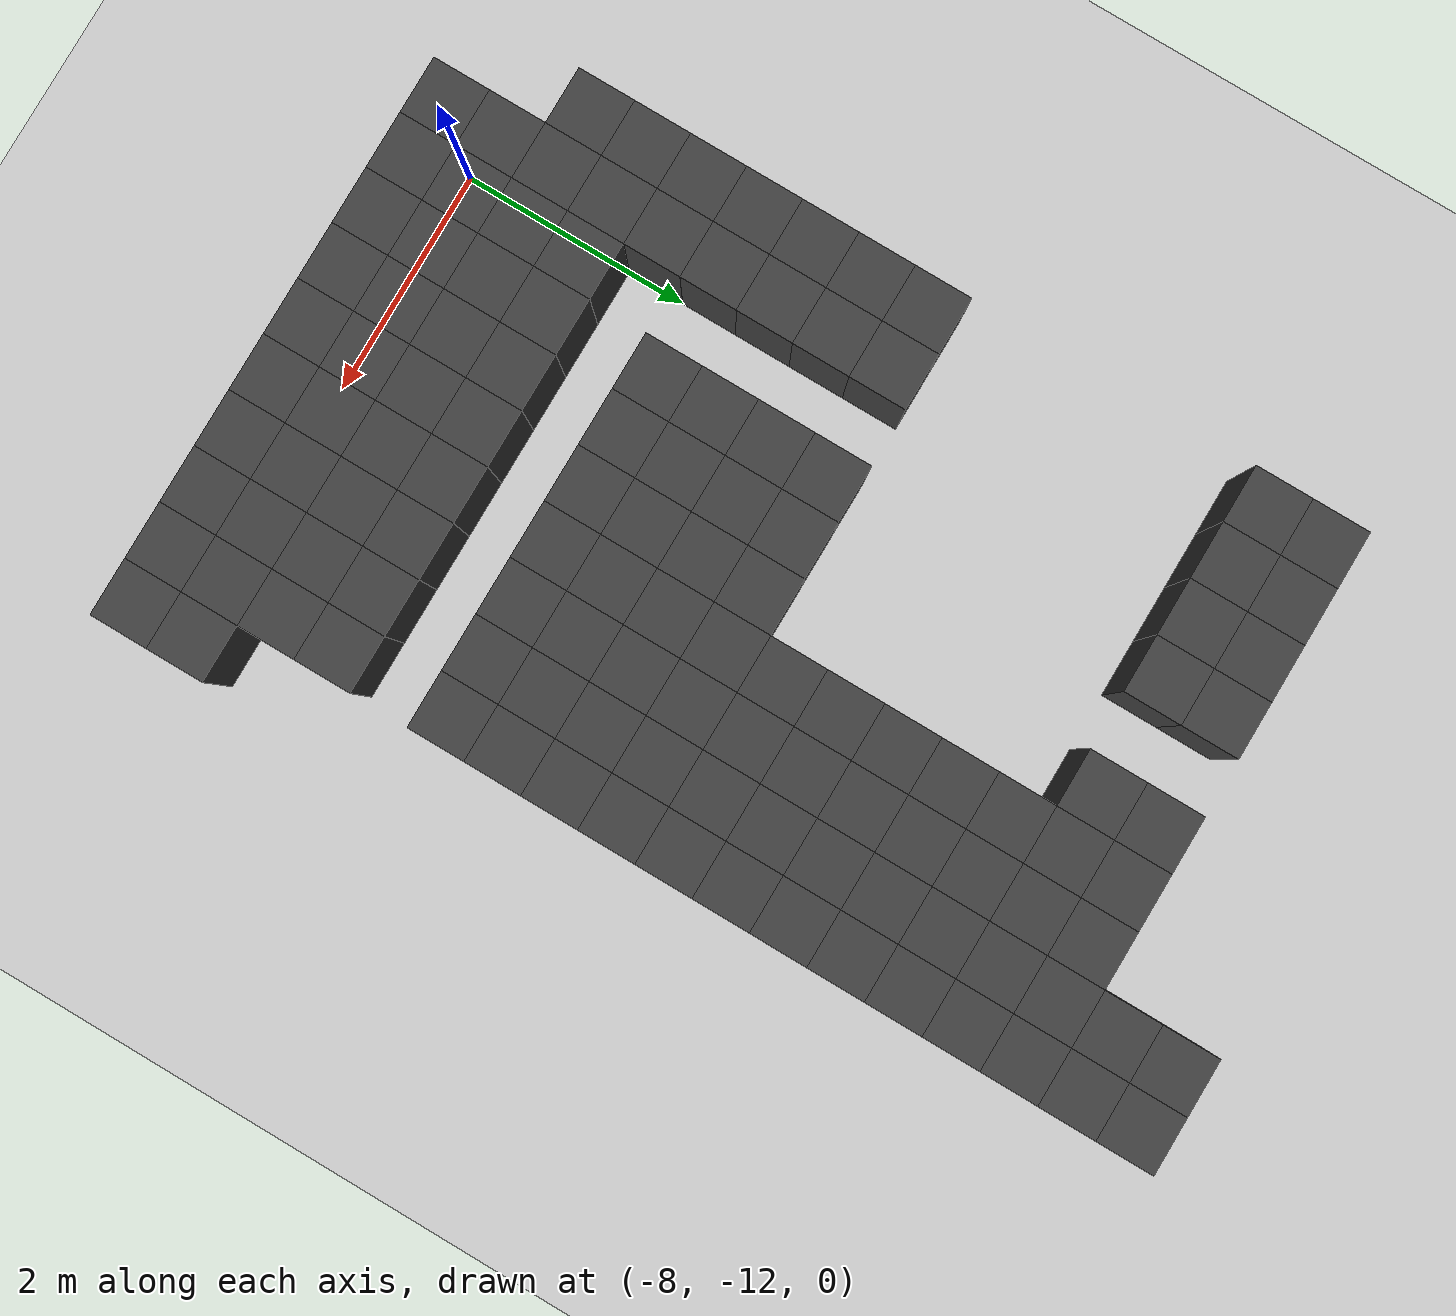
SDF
<sdf version="1.7">
 <world name="map_14510">
  <model name="ground_plane">
   <static>true</static>
   <link name="link">
    <collision name="collision">
     <geometry><plane><normal>0 0 1</normal><size>200 200</size></plane></geometry>
    </collision>
    <visual name="visual">
     <geometry><plane><normal>0 0 1</normal><size>200 200</size></plane></geometry>
     <material><ambient>0.8 0.8 0.8 1</ambient><diffuse>0.8 0.8 0.8 1</diffuse></material>
    </visual>
   </link>
  </model>
  <model name="maze_environment">
   <static>true</static>
   <link name="wall_1097">
    <pose>-4.750 -3.750 0.500 0 0 0</pose>
    <collision name="col"><geometry><box><size>0.5 0.5 1.0</size></box></geometry></collision>
    <visual name="vis">
     <geometry><box><size>0.5 0.5 1.0</size></box></geometry>
     <material><ambient>0.15 0.15 0.15 1</ambient><diffuse>0.25 0.25 0.25 1</diffuse></material>
    </visual>
   </link>
   <link name="wall_1098">
    <pose>-4.250 -3.750 0.500 0 0 0</pose>
    <collision name="col"><geometry><box><size>0.5 0.5 1.0</size></box></geometry></collision>
    <visual name="vis">
     <geometry><box><size>0.5 0.5 1.0</size></box></geometry>
     <material><ambient>0.15 0.15 0.15 1</ambient><diffuse>0.25 0.25 0.25 1</diffuse></material>
    </visual>
   </link>
   <link name="wall_1133">
    <pose>-4.750 -4.250 0.500 0 0 0</pose>
    <collision name="col"><geometry><box><size>0.5 0.5 1.0</size></box></geometry></collision>
    <visual name="vis">
     <geometry><box><size>0.5 0.5 1.0</size></box></geometry>
     <material><ambient>0.15 0.15 0.15 1</ambient><diffuse>0.25 0.25 0.25 1</diffuse></material>
    </visual>
   </link>
   <link name="wall_1134">
    <pose>-4.250 -4.250 0.500 0 0 0</pose>
    <collision name="col"><geometry><box><size>0.5 0.5 1.0</size></box></geometry></collision>
    <visual name="vis">
     <geometry><box><size>0.5 0.5 1.0</size></box></geometry>
     <material><ambient>0.15 0.15 0.15 1</ambient><diffuse>0.25 0.25 0.25 1</diffuse></material>
    </visual>
   </link>
   <link name="wall_1174">
    <pose>-8.750 -4.750 0.500 0 0 0</pose>
    <collision name="col"><geometry><box><size>0.5 0.5 1.0</size></box></geometry></collision>
    <visual name="vis">
     <geometry><box><size>0.5 0.5 1.0</size></box></geometry>
     <material><ambient>0.15 0.15 0.15 1</ambient><diffuse>0.25 0.25 0.25 1</diffuse></material>
    </visual>
   </link>
   <link name="wall_1175">
    <pose>-8.250 -4.750 0.500 0 0 0</pose>
    <collision name="col"><geometry><box><size>0.5 0.5 1.0</size></box></geometry></collision>
    <visual name="vis">
     <geometry><box><size>0.5 0.5 1.0</size></box></geometry>
     <material><ambient>0.15 0.15 0.15 1</ambient><diffuse>0.25 0.25 0.25 1</diffuse></material>
    </visual>
   </link>
   <link name="wall_1176">
    <pose>-7.750 -4.750 0.500 0 0 0</pose>
    <collision name="col"><geometry><box><size>0.5 0.5 1.0</size></box></geometry></collision>
    <visual name="vis">
     <geometry><box><size>0.5 0.5 1.0</size></box></geometry>
     <material><ambient>0.15 0.15 0.15 1</ambient><diffuse>0.25 0.25 0.25 1</diffuse></material>
    </visual>
   </link>
   <link name="wall_1177">
    <pose>-7.250 -4.750 0.500 0 0 0</pose>
    <collision name="col"><geometry><box><size>0.5 0.5 1.0</size></box></geometry></collision>
    <visual name="vis">
     <geometry><box><size>0.5 0.5 1.0</size></box></geometry>
     <material><ambient>0.15 0.15 0.15 1</ambient><diffuse>0.25 0.25 0.25 1</diffuse></material>
    </visual>
   </link>
   <link name="wall_1178">
    <pose>-6.250 -4.750 0.500 0 0 0</pose>
    <collision name="col"><geometry><box><size>0.5 0.5 1.0</size></box></geometry></collision>
    <visual name="vis">
     <geometry><box><size>0.5 0.5 1.0</size></box></geometry>
     <material><ambient>0.15 0.15 0.15 1</ambient><diffuse>0.25 0.25 0.25 1</diffuse></material>
    </visual>
   </link>
   <link name="wall_1179">
    <pose>-5.750 -4.750 0.500 0 0 0</pose>
    <collision name="col"><geometry><box><size>0.5 0.5 1.0</size></box></geometry></collision>
    <visual name="vis">
     <geometry><box><size>0.5 0.5 1.0</size></box></geometry>
     <material><ambient>0.15 0.15 0.15 1</ambient><diffuse>0.25 0.25 0.25 1</diffuse></material>
    </visual>
   </link>
   <link name="wall_1180">
    <pose>-5.250 -4.750 0.500 0 0 0</pose>
    <collision name="col"><geometry><box><size>0.5 0.5 1.0</size></box></geometry></collision>
    <visual name="vis">
     <geometry><box><size>0.5 0.5 1.0</size></box></geometry>
     <material><ambient>0.15 0.15 0.15 1</ambient><diffuse>0.25 0.25 0.25 1</diffuse></material>
    </visual>
   </link>
   <link name="wall_1181">
    <pose>-4.750 -4.750 0.500 0 0 0</pose>
    <collision name="col"><geometry><box><size>0.5 0.5 1.0</size></box></geometry></collision>
    <visual name="vis">
     <geometry><box><size>0.5 0.5 1.0</size></box></geometry>
     <material><ambient>0.15 0.15 0.15 1</ambient><diffuse>0.25 0.25 0.25 1</diffuse></material>
    </visual>
   </link>
   <link name="wall_1182">
    <pose>-4.250 -4.750 0.500 0 0 0</pose>
    <collision name="col"><geometry><box><size>0.5 0.5 1.0</size></box></geometry></collision>
    <visual name="vis">
     <geometry><box><size>0.5 0.5 1.0</size></box></geometry>
     <material><ambient>0.15 0.15 0.15 1</ambient><diffuse>0.25 0.25 0.25 1</diffuse></material>
    </visual>
   </link>
   <link name="wall_1222">
    <pose>-8.750 -5.250 0.500 0 0 0</pose>
    <collision name="col"><geometry><box><size>0.5 0.5 1.0</size></box></geometry></collision>
    <visual name="vis">
     <geometry><box><size>0.5 0.5 1.0</size></box></geometry>
     <material><ambient>0.15 0.15 0.15 1</ambient><diffuse>0.25 0.25 0.25 1</diffuse></material>
    </visual>
   </link>
   <link name="wall_1223">
    <pose>-8.250 -5.250 0.500 0 0 0</pose>
    <collision name="col"><geometry><box><size>0.5 0.5 1.0</size></box></geometry></collision>
    <visual name="vis">
     <geometry><box><size>0.5 0.5 1.0</size></box></geometry>
     <material><ambient>0.15 0.15 0.15 1</ambient><diffuse>0.25 0.25 0.25 1</diffuse></material>
    </visual>
   </link>
   <link name="wall_1224">
    <pose>-7.750 -5.250 0.500 0 0 0</pose>
    <collision name="col"><geometry><box><size>0.5 0.5 1.0</size></box></geometry></collision>
    <visual name="vis">
     <geometry><box><size>0.5 0.5 1.0</size></box></geometry>
     <material><ambient>0.15 0.15 0.15 1</ambient><diffuse>0.25 0.25 0.25 1</diffuse></material>
    </visual>
   </link>
   <link name="wall_1225">
    <pose>-7.250 -5.250 0.500 0 0 0</pose>
    <collision name="col"><geometry><box><size>0.5 0.5 1.0</size></box></geometry></collision>
    <visual name="vis">
     <geometry><box><size>0.5 0.5 1.0</size></box></geometry>
     <material><ambient>0.15 0.15 0.15 1</ambient><diffuse>0.25 0.25 0.25 1</diffuse></material>
    </visual>
   </link>
   <link name="wall_1226">
    <pose>-6.250 -5.250 0.500 0 0 0</pose>
    <collision name="col"><geometry><box><size>0.5 0.5 1.0</size></box></geometry></collision>
    <visual name="vis">
     <geometry><box><size>0.5 0.5 1.0</size></box></geometry>
     <material><ambient>0.15 0.15 0.15 1</ambient><diffuse>0.25 0.25 0.25 1</diffuse></material>
    </visual>
   </link>
   <link name="wall_1227">
    <pose>-5.750 -5.250 0.500 0 0 0</pose>
    <collision name="col"><geometry><box><size>0.5 0.5 1.0</size></box></geometry></collision>
    <visual name="vis">
     <geometry><box><size>0.5 0.5 1.0</size></box></geometry>
     <material><ambient>0.15 0.15 0.15 1</ambient><diffuse>0.25 0.25 0.25 1</diffuse></material>
    </visual>
   </link>
   <link name="wall_1228">
    <pose>-5.250 -5.250 0.500 0 0 0</pose>
    <collision name="col"><geometry><box><size>0.5 0.5 1.0</size></box></geometry></collision>
    <visual name="vis">
     <geometry><box><size>0.5 0.5 1.0</size></box></geometry>
     <material><ambient>0.15 0.15 0.15 1</ambient><diffuse>0.25 0.25 0.25 1</diffuse></material>
    </visual>
   </link>
   <link name="wall_1229">
    <pose>-4.750 -5.250 0.500 0 0 0</pose>
    <collision name="col"><geometry><box><size>0.5 0.5 1.0</size></box></geometry></collision>
    <visual name="vis">
     <geometry><box><size>0.5 0.5 1.0</size></box></geometry>
     <material><ambient>0.15 0.15 0.15 1</ambient><diffuse>0.25 0.25 0.25 1</diffuse></material>
    </visual>
   </link>
   <link name="wall_1230">
    <pose>-4.250 -5.250 0.500 0 0 0</pose>
    <collision name="col"><geometry><box><size>0.5 0.5 1.0</size></box></geometry></collision>
    <visual name="vis">
     <geometry><box><size>0.5 0.5 1.0</size></box></geometry>
     <material><ambient>0.15 0.15 0.15 1</ambient><diffuse>0.25 0.25 0.25 1</diffuse></material>
    </visual>
   </link>
   <link name="wall_1268">
    <pose>-5.750 -5.750 0.500 0 0 0</pose>
    <collision name="col"><geometry><box><size>0.5 0.5 1.0</size></box></geometry></collision>
    <visual name="vis">
     <geometry><box><size>0.5 0.5 1.0</size></box></geometry>
     <material><ambient>0.15 0.15 0.15 1</ambient><diffuse>0.25 0.25 0.25 1</diffuse></material>
    </visual>
   </link>
   <link name="wall_1269">
    <pose>-5.250 -5.750 0.500 0 0 0</pose>
    <collision name="col"><geometry><box><size>0.5 0.5 1.0</size></box></geometry></collision>
    <visual name="vis">
     <geometry><box><size>0.5 0.5 1.0</size></box></geometry>
     <material><ambient>0.15 0.15 0.15 1</ambient><diffuse>0.25 0.25 0.25 1</diffuse></material>
    </visual>
   </link>
   <link name="wall_1270">
    <pose>-4.750 -5.750 0.500 0 0 0</pose>
    <collision name="col"><geometry><box><size>0.5 0.5 1.0</size></box></geometry></collision>
    <visual name="vis">
     <geometry><box><size>0.5 0.5 1.0</size></box></geometry>
     <material><ambient>0.15 0.15 0.15 1</ambient><diffuse>0.25 0.25 0.25 1</diffuse></material>
    </visual>
   </link>
   <link name="wall_1271">
    <pose>-4.250 -5.750 0.500 0 0 0</pose>
    <collision name="col"><geometry><box><size>0.5 0.5 1.0</size></box></geometry></collision>
    <visual name="vis">
     <geometry><box><size>0.5 0.5 1.0</size></box></geometry>
     <material><ambient>0.15 0.15 0.15 1</ambient><diffuse>0.25 0.25 0.25 1</diffuse></material>
    </visual>
   </link>
   <link name="wall_1309">
    <pose>-5.750 -6.250 0.500 0 0 0</pose>
    <collision name="col"><geometry><box><size>0.5 0.5 1.0</size></box></geometry></collision>
    <visual name="vis">
     <geometry><box><size>0.5 0.5 1.0</size></box></geometry>
     <material><ambient>0.15 0.15 0.15 1</ambient><diffuse>0.25 0.25 0.25 1</diffuse></material>
    </visual>
   </link>
   <link name="wall_1310">
    <pose>-5.250 -6.250 0.500 0 0 0</pose>
    <collision name="col"><geometry><box><size>0.5 0.5 1.0</size></box></geometry></collision>
    <visual name="vis">
     <geometry><box><size>0.5 0.5 1.0</size></box></geometry>
     <material><ambient>0.15 0.15 0.15 1</ambient><diffuse>0.25 0.25 0.25 1</diffuse></material>
    </visual>
   </link>
   <link name="wall_1311">
    <pose>-4.750 -6.250 0.500 0 0 0</pose>
    <collision name="col"><geometry><box><size>0.5 0.5 1.0</size></box></geometry></collision>
    <visual name="vis">
     <geometry><box><size>0.5 0.5 1.0</size></box></geometry>
     <material><ambient>0.15 0.15 0.15 1</ambient><diffuse>0.25 0.25 0.25 1</diffuse></material>
    </visual>
   </link>
   <link name="wall_1312">
    <pose>-4.250 -6.250 0.500 0 0 0</pose>
    <collision name="col"><geometry><box><size>0.5 0.5 1.0</size></box></geometry></collision>
    <visual name="vis">
     <geometry><box><size>0.5 0.5 1.0</size></box></geometry>
     <material><ambient>0.15 0.15 0.15 1</ambient><diffuse>0.25 0.25 0.25 1</diffuse></material>
    </visual>
   </link>
   <link name="wall_1344">
    <pose>-5.750 -6.750 0.500 0 0 0</pose>
    <collision name="col"><geometry><box><size>0.5 0.5 1.0</size></box></geometry></collision>
    <visual name="vis">
     <geometry><box><size>0.5 0.5 1.0</size></box></geometry>
     <material><ambient>0.15 0.15 0.15 1</ambient><diffuse>0.25 0.25 0.25 1</diffuse></material>
    </visual>
   </link>
   <link name="wall_1345">
    <pose>-5.250 -6.750 0.500 0 0 0</pose>
    <collision name="col"><geometry><box><size>0.5 0.5 1.0</size></box></geometry></collision>
    <visual name="vis">
     <geometry><box><size>0.5 0.5 1.0</size></box></geometry>
     <material><ambient>0.15 0.15 0.15 1</ambient><diffuse>0.25 0.25 0.25 1</diffuse></material>
    </visual>
   </link>
   <link name="wall_1346">
    <pose>-4.750 -6.750 0.500 0 0 0</pose>
    <collision name="col"><geometry><box><size>0.5 0.5 1.0</size></box></geometry></collision>
    <visual name="vis">
     <geometry><box><size>0.5 0.5 1.0</size></box></geometry>
     <material><ambient>0.15 0.15 0.15 1</ambient><diffuse>0.25 0.25 0.25 1</diffuse></material>
    </visual>
   </link>
   <link name="wall_1347">
    <pose>-4.250 -6.750 0.500 0 0 0</pose>
    <collision name="col"><geometry><box><size>0.5 0.5 1.0</size></box></geometry></collision>
    <visual name="vis">
     <geometry><box><size>0.5 0.5 1.0</size></box></geometry>
     <material><ambient>0.15 0.15 0.15 1</ambient><diffuse>0.25 0.25 0.25 1</diffuse></material>
    </visual>
   </link>
   <link name="wall_1379">
    <pose>-5.750 -7.250 0.500 0 0 0</pose>
    <collision name="col"><geometry><box><size>0.5 0.5 1.0</size></box></geometry></collision>
    <visual name="vis">
     <geometry><box><size>0.5 0.5 1.0</size></box></geometry>
     <material><ambient>0.15 0.15 0.15 1</ambient><diffuse>0.25 0.25 0.25 1</diffuse></material>
    </visual>
   </link>
   <link name="wall_1380">
    <pose>-5.250 -7.250 0.500 0 0 0</pose>
    <collision name="col"><geometry><box><size>0.5 0.5 1.0</size></box></geometry></collision>
    <visual name="vis">
     <geometry><box><size>0.5 0.5 1.0</size></box></geometry>
     <material><ambient>0.15 0.15 0.15 1</ambient><diffuse>0.25 0.25 0.25 1</diffuse></material>
    </visual>
   </link>
   <link name="wall_1381">
    <pose>-4.750 -7.250 0.500 0 0 0</pose>
    <collision name="col"><geometry><box><size>0.5 0.5 1.0</size></box></geometry></collision>
    <visual name="vis">
     <geometry><box><size>0.5 0.5 1.0</size></box></geometry>
     <material><ambient>0.15 0.15 0.15 1</ambient><diffuse>0.25 0.25 0.25 1</diffuse></material>
    </visual>
   </link>
   <link name="wall_1382">
    <pose>-4.250 -7.250 0.500 0 0 0</pose>
    <collision name="col"><geometry><box><size>0.5 0.5 1.0</size></box></geometry></collision>
    <visual name="vis">
     <geometry><box><size>0.5 0.5 1.0</size></box></geometry>
     <material><ambient>0.15 0.15 0.15 1</ambient><diffuse>0.25 0.25 0.25 1</diffuse></material>
    </visual>
   </link>
   <link name="wall_1409">
    <pose>-5.750 -7.750 0.500 0 0 0</pose>
    <collision name="col"><geometry><box><size>0.5 0.5 1.0</size></box></geometry></collision>
    <visual name="vis">
     <geometry><box><size>0.5 0.5 1.0</size></box></geometry>
     <material><ambient>0.15 0.15 0.15 1</ambient><diffuse>0.25 0.25 0.25 1</diffuse></material>
    </visual>
   </link>
   <link name="wall_1410">
    <pose>-5.250 -7.750 0.500 0 0 0</pose>
    <collision name="col"><geometry><box><size>0.5 0.5 1.0</size></box></geometry></collision>
    <visual name="vis">
     <geometry><box><size>0.5 0.5 1.0</size></box></geometry>
     <material><ambient>0.15 0.15 0.15 1</ambient><diffuse>0.25 0.25 0.25 1</diffuse></material>
    </visual>
   </link>
   <link name="wall_1411">
    <pose>-4.750 -7.750 0.500 0 0 0</pose>
    <collision name="col"><geometry><box><size>0.5 0.5 1.0</size></box></geometry></collision>
    <visual name="vis">
     <geometry><box><size>0.5 0.5 1.0</size></box></geometry>
     <material><ambient>0.15 0.15 0.15 1</ambient><diffuse>0.25 0.25 0.25 1</diffuse></material>
    </visual>
   </link>
   <link name="wall_1412">
    <pose>-4.250 -7.750 0.500 0 0 0</pose>
    <collision name="col"><geometry><box><size>0.5 0.5 1.0</size></box></geometry></collision>
    <visual name="vis">
     <geometry><box><size>0.5 0.5 1.0</size></box></geometry>
     <material><ambient>0.15 0.15 0.15 1</ambient><diffuse>0.25 0.25 0.25 1</diffuse></material>
    </visual>
   </link>
   <link name="wall_1447">
    <pose>-8.750 -8.250 0.500 0 0 0</pose>
    <collision name="col"><geometry><box><size>0.5 0.5 1.0</size></box></geometry></collision>
    <visual name="vis">
     <geometry><box><size>0.5 0.5 1.0</size></box></geometry>
     <material><ambient>0.15 0.15 0.15 1</ambient><diffuse>0.25 0.25 0.25 1</diffuse></material>
    </visual>
   </link>
   <link name="wall_1448">
    <pose>-8.250 -8.250 0.500 0 0 0</pose>
    <collision name="col"><geometry><box><size>0.5 0.5 1.0</size></box></geometry></collision>
    <visual name="vis">
     <geometry><box><size>0.5 0.5 1.0</size></box></geometry>
     <material><ambient>0.15 0.15 0.15 1</ambient><diffuse>0.25 0.25 0.25 1</diffuse></material>
    </visual>
   </link>
   <link name="wall_1449">
    <pose>-7.250 -8.250 0.500 0 0 0</pose>
    <collision name="col"><geometry><box><size>0.5 0.5 1.0</size></box></geometry></collision>
    <visual name="vis">
     <geometry><box><size>0.5 0.5 1.0</size></box></geometry>
     <material><ambient>0.15 0.15 0.15 1</ambient><diffuse>0.25 0.25 0.25 1</diffuse></material>
    </visual>
   </link>
   <link name="wall_1450">
    <pose>-6.750 -8.250 0.500 0 0 0</pose>
    <collision name="col"><geometry><box><size>0.5 0.5 1.0</size></box></geometry></collision>
    <visual name="vis">
     <geometry><box><size>0.5 0.5 1.0</size></box></geometry>
     <material><ambient>0.15 0.15 0.15 1</ambient><diffuse>0.25 0.25 0.25 1</diffuse></material>
    </visual>
   </link>
   <link name="wall_1451">
    <pose>-6.250 -8.250 0.500 0 0 0</pose>
    <collision name="col"><geometry><box><size>0.5 0.5 1.0</size></box></geometry></collision>
    <visual name="vis">
     <geometry><box><size>0.5 0.5 1.0</size></box></geometry>
     <material><ambient>0.15 0.15 0.15 1</ambient><diffuse>0.25 0.25 0.25 1</diffuse></material>
    </visual>
   </link>
   <link name="wall_1452">
    <pose>-5.750 -8.250 0.500 0 0 0</pose>
    <collision name="col"><geometry><box><size>0.5 0.5 1.0</size></box></geometry></collision>
    <visual name="vis">
     <geometry><box><size>0.5 0.5 1.0</size></box></geometry>
     <material><ambient>0.15 0.15 0.15 1</ambient><diffuse>0.25 0.25 0.25 1</diffuse></material>
    </visual>
   </link>
   <link name="wall_1453">
    <pose>-5.250 -8.250 0.500 0 0 0</pose>
    <collision name="col"><geometry><box><size>0.5 0.5 1.0</size></box></geometry></collision>
    <visual name="vis">
     <geometry><box><size>0.5 0.5 1.0</size></box></geometry>
     <material><ambient>0.15 0.15 0.15 1</ambient><diffuse>0.25 0.25 0.25 1</diffuse></material>
    </visual>
   </link>
   <link name="wall_1454">
    <pose>-4.750 -8.250 0.500 0 0 0</pose>
    <collision name="col"><geometry><box><size>0.5 0.5 1.0</size></box></geometry></collision>
    <visual name="vis">
     <geometry><box><size>0.5 0.5 1.0</size></box></geometry>
     <material><ambient>0.15 0.15 0.15 1</ambient><diffuse>0.25 0.25 0.25 1</diffuse></material>
    </visual>
   </link>
   <link name="wall_1455">
    <pose>-4.250 -8.250 0.500 0 0 0</pose>
    <collision name="col"><geometry><box><size>0.5 0.5 1.0</size></box></geometry></collision>
    <visual name="vis">
     <geometry><box><size>0.5 0.5 1.0</size></box></geometry>
     <material><ambient>0.15 0.15 0.15 1</ambient><diffuse>0.25 0.25 0.25 1</diffuse></material>
    </visual>
   </link>
   <link name="wall_1495">
    <pose>-8.750 -8.750 0.500 0 0 0</pose>
    <collision name="col"><geometry><box><size>0.5 0.5 1.0</size></box></geometry></collision>
    <visual name="vis">
     <geometry><box><size>0.5 0.5 1.0</size></box></geometry>
     <material><ambient>0.15 0.15 0.15 1</ambient><diffuse>0.25 0.25 0.25 1</diffuse></material>
    </visual>
   </link>
   <link name="wall_1496">
    <pose>-8.250 -8.750 0.500 0 0 0</pose>
    <collision name="col"><geometry><box><size>0.5 0.5 1.0</size></box></geometry></collision>
    <visual name="vis">
     <geometry><box><size>0.5 0.5 1.0</size></box></geometry>
     <material><ambient>0.15 0.15 0.15 1</ambient><diffuse>0.25 0.25 0.25 1</diffuse></material>
    </visual>
   </link>
   <link name="wall_1497">
    <pose>-7.250 -8.750 0.500 0 0 0</pose>
    <collision name="col"><geometry><box><size>0.5 0.5 1.0</size></box></geometry></collision>
    <visual name="vis">
     <geometry><box><size>0.5 0.5 1.0</size></box></geometry>
     <material><ambient>0.15 0.15 0.15 1</ambient><diffuse>0.25 0.25 0.25 1</diffuse></material>
    </visual>
   </link>
   <link name="wall_1498">
    <pose>-6.750 -8.750 0.500 0 0 0</pose>
    <collision name="col"><geometry><box><size>0.5 0.5 1.0</size></box></geometry></collision>
    <visual name="vis">
     <geometry><box><size>0.5 0.5 1.0</size></box></geometry>
     <material><ambient>0.15 0.15 0.15 1</ambient><diffuse>0.25 0.25 0.25 1</diffuse></material>
    </visual>
   </link>
   <link name="wall_1499">
    <pose>-6.250 -8.750 0.500 0 0 0</pose>
    <collision name="col"><geometry><box><size>0.5 0.5 1.0</size></box></geometry></collision>
    <visual name="vis">
     <geometry><box><size>0.5 0.5 1.0</size></box></geometry>
     <material><ambient>0.15 0.15 0.15 1</ambient><diffuse>0.25 0.25 0.25 1</diffuse></material>
    </visual>
   </link>
   <link name="wall_1500">
    <pose>-5.750 -8.750 0.500 0 0 0</pose>
    <collision name="col"><geometry><box><size>0.5 0.5 1.0</size></box></geometry></collision>
    <visual name="vis">
     <geometry><box><size>0.5 0.5 1.0</size></box></geometry>
     <material><ambient>0.15 0.15 0.15 1</ambient><diffuse>0.25 0.25 0.25 1</diffuse></material>
    </visual>
   </link>
   <link name="wall_1501">
    <pose>-5.250 -8.750 0.500 0 0 0</pose>
    <collision name="col"><geometry><box><size>0.5 0.5 1.0</size></box></geometry></collision>
    <visual name="vis">
     <geometry><box><size>0.5 0.5 1.0</size></box></geometry>
     <material><ambient>0.15 0.15 0.15 1</ambient><diffuse>0.25 0.25 0.25 1</diffuse></material>
    </visual>
   </link>
   <link name="wall_1502">
    <pose>-4.750 -8.750 0.500 0 0 0</pose>
    <collision name="col"><geometry><box><size>0.5 0.5 1.0</size></box></geometry></collision>
    <visual name="vis">
     <geometry><box><size>0.5 0.5 1.0</size></box></geometry>
     <material><ambient>0.15 0.15 0.15 1</ambient><diffuse>0.25 0.25 0.25 1</diffuse></material>
    </visual>
   </link>
   <link name="wall_1503">
    <pose>-4.250 -8.750 0.500 0 0 0</pose>
    <collision name="col"><geometry><box><size>0.5 0.5 1.0</size></box></geometry></collision>
    <visual name="vis">
     <geometry><box><size>0.5 0.5 1.0</size></box></geometry>
     <material><ambient>0.15 0.15 0.15 1</ambient><diffuse>0.25 0.25 0.25 1</diffuse></material>
    </visual>
   </link>
   <link name="wall_1543">
    <pose>-8.750 -9.250 0.500 0 0 0</pose>
    <collision name="col"><geometry><box><size>0.5 0.5 1.0</size></box></geometry></collision>
    <visual name="vis">
     <geometry><box><size>0.5 0.5 1.0</size></box></geometry>
     <material><ambient>0.15 0.15 0.15 1</ambient><diffuse>0.25 0.25 0.25 1</diffuse></material>
    </visual>
   </link>
   <link name="wall_1544">
    <pose>-8.250 -9.250 0.500 0 0 0</pose>
    <collision name="col"><geometry><box><size>0.5 0.5 1.0</size></box></geometry></collision>
    <visual name="vis">
     <geometry><box><size>0.5 0.5 1.0</size></box></geometry>
     <material><ambient>0.15 0.15 0.15 1</ambient><diffuse>0.25 0.25 0.25 1</diffuse></material>
    </visual>
   </link>
   <link name="wall_1545">
    <pose>-7.250 -9.250 0.500 0 0 0</pose>
    <collision name="col"><geometry><box><size>0.5 0.5 1.0</size></box></geometry></collision>
    <visual name="vis">
     <geometry><box><size>0.5 0.5 1.0</size></box></geometry>
     <material><ambient>0.15 0.15 0.15 1</ambient><diffuse>0.25 0.25 0.25 1</diffuse></material>
    </visual>
   </link>
   <link name="wall_1546">
    <pose>-6.750 -9.250 0.500 0 0 0</pose>
    <collision name="col"><geometry><box><size>0.5 0.5 1.0</size></box></geometry></collision>
    <visual name="vis">
     <geometry><box><size>0.5 0.5 1.0</size></box></geometry>
     <material><ambient>0.15 0.15 0.15 1</ambient><diffuse>0.25 0.25 0.25 1</diffuse></material>
    </visual>
   </link>
   <link name="wall_1547">
    <pose>-6.250 -9.250 0.500 0 0 0</pose>
    <collision name="col"><geometry><box><size>0.5 0.5 1.0</size></box></geometry></collision>
    <visual name="vis">
     <geometry><box><size>0.5 0.5 1.0</size></box></geometry>
     <material><ambient>0.15 0.15 0.15 1</ambient><diffuse>0.25 0.25 0.25 1</diffuse></material>
    </visual>
   </link>
   <link name="wall_1548">
    <pose>-5.750 -9.250 0.500 0 0 0</pose>
    <collision name="col"><geometry><box><size>0.5 0.5 1.0</size></box></geometry></collision>
    <visual name="vis">
     <geometry><box><size>0.5 0.5 1.0</size></box></geometry>
     <material><ambient>0.15 0.15 0.15 1</ambient><diffuse>0.25 0.25 0.25 1</diffuse></material>
    </visual>
   </link>
   <link name="wall_1549">
    <pose>-5.250 -9.250 0.500 0 0 0</pose>
    <collision name="col"><geometry><box><size>0.5 0.5 1.0</size></box></geometry></collision>
    <visual name="vis">
     <geometry><box><size>0.5 0.5 1.0</size></box></geometry>
     <material><ambient>0.15 0.15 0.15 1</ambient><diffuse>0.25 0.25 0.25 1</diffuse></material>
    </visual>
   </link>
   <link name="wall_1550">
    <pose>-4.750 -9.250 0.500 0 0 0</pose>
    <collision name="col"><geometry><box><size>0.5 0.5 1.0</size></box></geometry></collision>
    <visual name="vis">
     <geometry><box><size>0.5 0.5 1.0</size></box></geometry>
     <material><ambient>0.15 0.15 0.15 1</ambient><diffuse>0.25 0.25 0.25 1</diffuse></material>
    </visual>
   </link>
   <link name="wall_1551">
    <pose>-4.250 -9.250 0.500 0 0 0</pose>
    <collision name="col"><geometry><box><size>0.5 0.5 1.0</size></box></geometry></collision>
    <visual name="vis">
     <geometry><box><size>0.5 0.5 1.0</size></box></geometry>
     <material><ambient>0.15 0.15 0.15 1</ambient><diffuse>0.25 0.25 0.25 1</diffuse></material>
    </visual>
   </link>
   <link name="wall_1584">
    <pose>-8.750 -9.750 0.500 0 0 0</pose>
    <collision name="col"><geometry><box><size>0.5 0.5 1.0</size></box></geometry></collision>
    <visual name="vis">
     <geometry><box><size>0.5 0.5 1.0</size></box></geometry>
     <material><ambient>0.15 0.15 0.15 1</ambient><diffuse>0.25 0.25 0.25 1</diffuse></material>
    </visual>
   </link>
   <link name="wall_1585">
    <pose>-8.250 -9.750 0.500 0 0 0</pose>
    <collision name="col"><geometry><box><size>0.5 0.5 1.0</size></box></geometry></collision>
    <visual name="vis">
     <geometry><box><size>0.5 0.5 1.0</size></box></geometry>
     <material><ambient>0.15 0.15 0.15 1</ambient><diffuse>0.25 0.25 0.25 1</diffuse></material>
    </visual>
   </link>
   <link name="wall_1586">
    <pose>-7.250 -9.750 0.500 0 0 0</pose>
    <collision name="col"><geometry><box><size>0.5 0.5 1.0</size></box></geometry></collision>
    <visual name="vis">
     <geometry><box><size>0.5 0.5 1.0</size></box></geometry>
     <material><ambient>0.15 0.15 0.15 1</ambient><diffuse>0.25 0.25 0.25 1</diffuse></material>
    </visual>
   </link>
   <link name="wall_1587">
    <pose>-6.750 -9.750 0.500 0 0 0</pose>
    <collision name="col"><geometry><box><size>0.5 0.5 1.0</size></box></geometry></collision>
    <visual name="vis">
     <geometry><box><size>0.5 0.5 1.0</size></box></geometry>
     <material><ambient>0.15 0.15 0.15 1</ambient><diffuse>0.25 0.25 0.25 1</diffuse></material>
    </visual>
   </link>
   <link name="wall_1588">
    <pose>-6.250 -9.750 0.500 0 0 0</pose>
    <collision name="col"><geometry><box><size>0.5 0.5 1.0</size></box></geometry></collision>
    <visual name="vis">
     <geometry><box><size>0.5 0.5 1.0</size></box></geometry>
     <material><ambient>0.15 0.15 0.15 1</ambient><diffuse>0.25 0.25 0.25 1</diffuse></material>
    </visual>
   </link>
   <link name="wall_1589">
    <pose>-5.750 -9.750 0.500 0 0 0</pose>
    <collision name="col"><geometry><box><size>0.5 0.5 1.0</size></box></geometry></collision>
    <visual name="vis">
     <geometry><box><size>0.5 0.5 1.0</size></box></geometry>
     <material><ambient>0.15 0.15 0.15 1</ambient><diffuse>0.25 0.25 0.25 1</diffuse></material>
    </visual>
   </link>
   <link name="wall_1590">
    <pose>-5.250 -9.750 0.500 0 0 0</pose>
    <collision name="col"><geometry><box><size>0.5 0.5 1.0</size></box></geometry></collision>
    <visual name="vis">
     <geometry><box><size>0.5 0.5 1.0</size></box></geometry>
     <material><ambient>0.15 0.15 0.15 1</ambient><diffuse>0.25 0.25 0.25 1</diffuse></material>
    </visual>
   </link>
   <link name="wall_1591">
    <pose>-4.750 -9.750 0.500 0 0 0</pose>
    <collision name="col"><geometry><box><size>0.5 0.5 1.0</size></box></geometry></collision>
    <visual name="vis">
     <geometry><box><size>0.5 0.5 1.0</size></box></geometry>
     <material><ambient>0.15 0.15 0.15 1</ambient><diffuse>0.25 0.25 0.25 1</diffuse></material>
    </visual>
   </link>
   <link name="wall_1592">
    <pose>-4.250 -9.750 0.500 0 0 0</pose>
    <collision name="col"><geometry><box><size>0.5 0.5 1.0</size></box></geometry></collision>
    <visual name="vis">
     <geometry><box><size>0.5 0.5 1.0</size></box></geometry>
     <material><ambient>0.15 0.15 0.15 1</ambient><diffuse>0.25 0.25 0.25 1</diffuse></material>
    </visual>
   </link>
   <link name="wall_1625">
    <pose>-8.750 -10.250 0.500 0 0 0</pose>
    <collision name="col"><geometry><box><size>0.5 0.5 1.0</size></box></geometry></collision>
    <visual name="vis">
     <geometry><box><size>0.5 0.5 1.0</size></box></geometry>
     <material><ambient>0.15 0.15 0.15 1</ambient><diffuse>0.25 0.25 0.25 1</diffuse></material>
    </visual>
   </link>
   <link name="wall_1626">
    <pose>-8.250 -10.250 0.500 0 0 0</pose>
    <collision name="col"><geometry><box><size>0.5 0.5 1.0</size></box></geometry></collision>
    <visual name="vis">
     <geometry><box><size>0.5 0.5 1.0</size></box></geometry>
     <material><ambient>0.15 0.15 0.15 1</ambient><diffuse>0.25 0.25 0.25 1</diffuse></material>
    </visual>
   </link>
   <link name="wall_1657">
    <pose>-8.750 -10.750 0.500 0 0 0</pose>
    <collision name="col"><geometry><box><size>0.5 0.5 1.0</size></box></geometry></collision>
    <visual name="vis">
     <geometry><box><size>0.5 0.5 1.0</size></box></geometry>
     <material><ambient>0.15 0.15 0.15 1</ambient><diffuse>0.25 0.25 0.25 1</diffuse></material>
    </visual>
   </link>
   <link name="wall_1658">
    <pose>-8.250 -10.750 0.500 0 0 0</pose>
    <collision name="col"><geometry><box><size>0.5 0.5 1.0</size></box></geometry></collision>
    <visual name="vis">
     <geometry><box><size>0.5 0.5 1.0</size></box></geometry>
     <material><ambient>0.15 0.15 0.15 1</ambient><diffuse>0.25 0.25 0.25 1</diffuse></material>
    </visual>
   </link>
   <link name="wall_1659">
    <pose>-7.750 -10.750 0.500 0 0 0</pose>
    <collision name="col"><geometry><box><size>0.5 0.5 1.0</size></box></geometry></collision>
    <visual name="vis">
     <geometry><box><size>0.5 0.5 1.0</size></box></geometry>
     <material><ambient>0.15 0.15 0.15 1</ambient><diffuse>0.25 0.25 0.25 1</diffuse></material>
    </visual>
   </link>
   <link name="wall_1660">
    <pose>-7.250 -10.750 0.500 0 0 0</pose>
    <collision name="col"><geometry><box><size>0.5 0.5 1.0</size></box></geometry></collision>
    <visual name="vis">
     <geometry><box><size>0.5 0.5 1.0</size></box></geometry>
     <material><ambient>0.15 0.15 0.15 1</ambient><diffuse>0.25 0.25 0.25 1</diffuse></material>
    </visual>
   </link>
   <link name="wall_1661">
    <pose>-6.750 -10.750 0.500 0 0 0</pose>
    <collision name="col"><geometry><box><size>0.5 0.5 1.0</size></box></geometry></collision>
    <visual name="vis">
     <geometry><box><size>0.5 0.5 1.0</size></box></geometry>
     <material><ambient>0.15 0.15 0.15 1</ambient><diffuse>0.25 0.25 0.25 1</diffuse></material>
    </visual>
   </link>
   <link name="wall_1662">
    <pose>-6.250 -10.750 0.500 0 0 0</pose>
    <collision name="col"><geometry><box><size>0.5 0.5 1.0</size></box></geometry></collision>
    <visual name="vis">
     <geometry><box><size>0.5 0.5 1.0</size></box></geometry>
     <material><ambient>0.15 0.15 0.15 1</ambient><diffuse>0.25 0.25 0.25 1</diffuse></material>
    </visual>
   </link>
   <link name="wall_1663">
    <pose>-5.750 -10.750 0.500 0 0 0</pose>
    <collision name="col"><geometry><box><size>0.5 0.5 1.0</size></box></geometry></collision>
    <visual name="vis">
     <geometry><box><size>0.5 0.5 1.0</size></box></geometry>
     <material><ambient>0.15 0.15 0.15 1</ambient><diffuse>0.25 0.25 0.25 1</diffuse></material>
    </visual>
   </link>
   <link name="wall_1664">
    <pose>-5.250 -10.750 0.500 0 0 0</pose>
    <collision name="col"><geometry><box><size>0.5 0.5 1.0</size></box></geometry></collision>
    <visual name="vis">
     <geometry><box><size>0.5 0.5 1.0</size></box></geometry>
     <material><ambient>0.15 0.15 0.15 1</ambient><diffuse>0.25 0.25 0.25 1</diffuse></material>
    </visual>
   </link>
   <link name="wall_1665">
    <pose>-4.750 -10.750 0.500 0 0 0</pose>
    <collision name="col"><geometry><box><size>0.5 0.5 1.0</size></box></geometry></collision>
    <visual name="vis">
     <geometry><box><size>0.5 0.5 1.0</size></box></geometry>
     <material><ambient>0.15 0.15 0.15 1</ambient><diffuse>0.25 0.25 0.25 1</diffuse></material>
    </visual>
   </link>
   <link name="wall_1666">
    <pose>-4.250 -10.750 0.500 0 0 0</pose>
    <collision name="col"><geometry><box><size>0.5 0.5 1.0</size></box></geometry></collision>
    <visual name="vis">
     <geometry><box><size>0.5 0.5 1.0</size></box></geometry>
     <material><ambient>0.15 0.15 0.15 1</ambient><diffuse>0.25 0.25 0.25 1</diffuse></material>
    </visual>
   </link>
   <link name="wall_1696">
    <pose>-8.750 -11.250 0.500 0 0 0</pose>
    <collision name="col"><geometry><box><size>0.5 0.5 1.0</size></box></geometry></collision>
    <visual name="vis">
     <geometry><box><size>0.5 0.5 1.0</size></box></geometry>
     <material><ambient>0.15 0.15 0.15 1</ambient><diffuse>0.25 0.25 0.25 1</diffuse></material>
    </visual>
   </link>
   <link name="wall_1697">
    <pose>-8.250 -11.250 0.500 0 0 0</pose>
    <collision name="col"><geometry><box><size>0.5 0.5 1.0</size></box></geometry></collision>
    <visual name="vis">
     <geometry><box><size>0.5 0.5 1.0</size></box></geometry>
     <material><ambient>0.15 0.15 0.15 1</ambient><diffuse>0.25 0.25 0.25 1</diffuse></material>
    </visual>
   </link>
   <link name="wall_1698">
    <pose>-7.750 -11.250 0.500 0 0 0</pose>
    <collision name="col"><geometry><box><size>0.5 0.5 1.0</size></box></geometry></collision>
    <visual name="vis">
     <geometry><box><size>0.5 0.5 1.0</size></box></geometry>
     <material><ambient>0.15 0.15 0.15 1</ambient><diffuse>0.25 0.25 0.25 1</diffuse></material>
    </visual>
   </link>
   <link name="wall_1699">
    <pose>-7.250 -11.250 0.500 0 0 0</pose>
    <collision name="col"><geometry><box><size>0.5 0.5 1.0</size></box></geometry></collision>
    <visual name="vis">
     <geometry><box><size>0.5 0.5 1.0</size></box></geometry>
     <material><ambient>0.15 0.15 0.15 1</ambient><diffuse>0.25 0.25 0.25 1</diffuse></material>
    </visual>
   </link>
   <link name="wall_1700">
    <pose>-6.750 -11.250 0.500 0 0 0</pose>
    <collision name="col"><geometry><box><size>0.5 0.5 1.0</size></box></geometry></collision>
    <visual name="vis">
     <geometry><box><size>0.5 0.5 1.0</size></box></geometry>
     <material><ambient>0.15 0.15 0.15 1</ambient><diffuse>0.25 0.25 0.25 1</diffuse></material>
    </visual>
   </link>
   <link name="wall_1701">
    <pose>-6.250 -11.250 0.500 0 0 0</pose>
    <collision name="col"><geometry><box><size>0.5 0.5 1.0</size></box></geometry></collision>
    <visual name="vis">
     <geometry><box><size>0.5 0.5 1.0</size></box></geometry>
     <material><ambient>0.15 0.15 0.15 1</ambient><diffuse>0.25 0.25 0.25 1</diffuse></material>
    </visual>
   </link>
   <link name="wall_1702">
    <pose>-5.750 -11.250 0.500 0 0 0</pose>
    <collision name="col"><geometry><box><size>0.5 0.5 1.0</size></box></geometry></collision>
    <visual name="vis">
     <geometry><box><size>0.5 0.5 1.0</size></box></geometry>
     <material><ambient>0.15 0.15 0.15 1</ambient><diffuse>0.25 0.25 0.25 1</diffuse></material>
    </visual>
   </link>
   <link name="wall_1703">
    <pose>-5.250 -11.250 0.500 0 0 0</pose>
    <collision name="col"><geometry><box><size>0.5 0.5 1.0</size></box></geometry></collision>
    <visual name="vis">
     <geometry><box><size>0.5 0.5 1.0</size></box></geometry>
     <material><ambient>0.15 0.15 0.15 1</ambient><diffuse>0.25 0.25 0.25 1</diffuse></material>
    </visual>
   </link>
   <link name="wall_1704">
    <pose>-4.750 -11.250 0.500 0 0 0</pose>
    <collision name="col"><geometry><box><size>0.5 0.5 1.0</size></box></geometry></collision>
    <visual name="vis">
     <geometry><box><size>0.5 0.5 1.0</size></box></geometry>
     <material><ambient>0.15 0.15 0.15 1</ambient><diffuse>0.25 0.25 0.25 1</diffuse></material>
    </visual>
   </link>
   <link name="wall_1705">
    <pose>-4.250 -11.250 0.500 0 0 0</pose>
    <collision name="col"><geometry><box><size>0.5 0.5 1.0</size></box></geometry></collision>
    <visual name="vis">
     <geometry><box><size>0.5 0.5 1.0</size></box></geometry>
     <material><ambient>0.15 0.15 0.15 1</ambient><diffuse>0.25 0.25 0.25 1</diffuse></material>
    </visual>
   </link>
   <link name="wall_1729">
    <pose>-8.250 -11.750 0.500 0 0 0</pose>
    <collision name="col"><geometry><box><size>0.5 0.5 1.0</size></box></geometry></collision>
    <visual name="vis">
     <geometry><box><size>0.5 0.5 1.0</size></box></geometry>
     <material><ambient>0.15 0.15 0.15 1</ambient><diffuse>0.25 0.25 0.25 1</diffuse></material>
    </visual>
   </link>
   <link name="wall_1730">
    <pose>-7.750 -11.750 0.500 0 0 0</pose>
    <collision name="col"><geometry><box><size>0.5 0.5 1.0</size></box></geometry></collision>
    <visual name="vis">
     <geometry><box><size>0.5 0.5 1.0</size></box></geometry>
     <material><ambient>0.15 0.15 0.15 1</ambient><diffuse>0.25 0.25 0.25 1</diffuse></material>
    </visual>
   </link>
   <link name="wall_1731">
    <pose>-7.250 -11.750 0.500 0 0 0</pose>
    <collision name="col"><geometry><box><size>0.5 0.5 1.0</size></box></geometry></collision>
    <visual name="vis">
     <geometry><box><size>0.5 0.5 1.0</size></box></geometry>
     <material><ambient>0.15 0.15 0.15 1</ambient><diffuse>0.25 0.25 0.25 1</diffuse></material>
    </visual>
   </link>
   <link name="wall_1732">
    <pose>-6.750 -11.750 0.500 0 0 0</pose>
    <collision name="col"><geometry><box><size>0.5 0.5 1.0</size></box></geometry></collision>
    <visual name="vis">
     <geometry><box><size>0.5 0.5 1.0</size></box></geometry>
     <material><ambient>0.15 0.15 0.15 1</ambient><diffuse>0.25 0.25 0.25 1</diffuse></material>
    </visual>
   </link>
   <link name="wall_1733">
    <pose>-6.250 -11.750 0.500 0 0 0</pose>
    <collision name="col"><geometry><box><size>0.5 0.5 1.0</size></box></geometry></collision>
    <visual name="vis">
     <geometry><box><size>0.5 0.5 1.0</size></box></geometry>
     <material><ambient>0.15 0.15 0.15 1</ambient><diffuse>0.25 0.25 0.25 1</diffuse></material>
    </visual>
   </link>
   <link name="wall_1734">
    <pose>-5.750 -11.750 0.500 0 0 0</pose>
    <collision name="col"><geometry><box><size>0.5 0.5 1.0</size></box></geometry></collision>
    <visual name="vis">
     <geometry><box><size>0.5 0.5 1.0</size></box></geometry>
     <material><ambient>0.15 0.15 0.15 1</ambient><diffuse>0.25 0.25 0.25 1</diffuse></material>
    </visual>
   </link>
   <link name="wall_1735">
    <pose>-5.250 -11.750 0.500 0 0 0</pose>
    <collision name="col"><geometry><box><size>0.5 0.5 1.0</size></box></geometry></collision>
    <visual name="vis">
     <geometry><box><size>0.5 0.5 1.0</size></box></geometry>
     <material><ambient>0.15 0.15 0.15 1</ambient><diffuse>0.25 0.25 0.25 1</diffuse></material>
    </visual>
   </link>
   <link name="wall_1736">
    <pose>-4.750 -11.750 0.500 0 0 0</pose>
    <collision name="col"><geometry><box><size>0.5 0.5 1.0</size></box></geometry></collision>
    <visual name="vis">
     <geometry><box><size>0.5 0.5 1.0</size></box></geometry>
     <material><ambient>0.15 0.15 0.15 1</ambient><diffuse>0.25 0.25 0.25 1</diffuse></material>
    </visual>
   </link>
   <link name="wall_1737">
    <pose>-4.250 -11.750 0.500 0 0 0</pose>
    <collision name="col"><geometry><box><size>0.5 0.5 1.0</size></box></geometry></collision>
    <visual name="vis">
     <geometry><box><size>0.5 0.5 1.0</size></box></geometry>
     <material><ambient>0.15 0.15 0.15 1</ambient><diffuse>0.25 0.25 0.25 1</diffuse></material>
    </visual>
   </link>
   <link name="wall_1738">
    <pose>-3.750 -11.750 0.500 0 0 0</pose>
    <collision name="col"><geometry><box><size>0.5 0.5 1.0</size></box></geometry></collision>
    <visual name="vis">
     <geometry><box><size>0.5 0.5 1.0</size></box></geometry>
     <material><ambient>0.15 0.15 0.15 1</ambient><diffuse>0.25 0.25 0.25 1</diffuse></material>
    </visual>
   </link>
   <link name="wall_1776">
    <pose>-8.250 -12.250 0.500 0 0 0</pose>
    <collision name="col"><geometry><box><size>0.5 0.5 1.0</size></box></geometry></collision>
    <visual name="vis">
     <geometry><box><size>0.5 0.5 1.0</size></box></geometry>
     <material><ambient>0.15 0.15 0.15 1</ambient><diffuse>0.25 0.25 0.25 1</diffuse></material>
    </visual>
   </link>
   <link name="wall_1777">
    <pose>-7.750 -12.250 0.500 0 0 0</pose>
    <collision name="col"><geometry><box><size>0.5 0.5 1.0</size></box></geometry></collision>
    <visual name="vis">
     <geometry><box><size>0.5 0.5 1.0</size></box></geometry>
     <material><ambient>0.15 0.15 0.15 1</ambient><diffuse>0.25 0.25 0.25 1</diffuse></material>
    </visual>
   </link>
   <link name="wall_1778">
    <pose>-7.250 -12.250 0.500 0 0 0</pose>
    <collision name="col"><geometry><box><size>0.5 0.5 1.0</size></box></geometry></collision>
    <visual name="vis">
     <geometry><box><size>0.5 0.5 1.0</size></box></geometry>
     <material><ambient>0.15 0.15 0.15 1</ambient><diffuse>0.25 0.25 0.25 1</diffuse></material>
    </visual>
   </link>
   <link name="wall_1779">
    <pose>-6.750 -12.250 0.500 0 0 0</pose>
    <collision name="col"><geometry><box><size>0.5 0.5 1.0</size></box></geometry></collision>
    <visual name="vis">
     <geometry><box><size>0.5 0.5 1.0</size></box></geometry>
     <material><ambient>0.15 0.15 0.15 1</ambient><diffuse>0.25 0.25 0.25 1</diffuse></material>
    </visual>
   </link>
   <link name="wall_1780">
    <pose>-6.250 -12.250 0.500 0 0 0</pose>
    <collision name="col"><geometry><box><size>0.5 0.5 1.0</size></box></geometry></collision>
    <visual name="vis">
     <geometry><box><size>0.5 0.5 1.0</size></box></geometry>
     <material><ambient>0.15 0.15 0.15 1</ambient><diffuse>0.25 0.25 0.25 1</diffuse></material>
    </visual>
   </link>
   <link name="wall_1781">
    <pose>-5.750 -12.250 0.500 0 0 0</pose>
    <collision name="col"><geometry><box><size>0.5 0.5 1.0</size></box></geometry></collision>
    <visual name="vis">
     <geometry><box><size>0.5 0.5 1.0</size></box></geometry>
     <material><ambient>0.15 0.15 0.15 1</ambient><diffuse>0.25 0.25 0.25 1</diffuse></material>
    </visual>
   </link>
   <link name="wall_1782">
    <pose>-5.250 -12.250 0.500 0 0 0</pose>
    <collision name="col"><geometry><box><size>0.5 0.5 1.0</size></box></geometry></collision>
    <visual name="vis">
     <geometry><box><size>0.5 0.5 1.0</size></box></geometry>
     <material><ambient>0.15 0.15 0.15 1</ambient><diffuse>0.25 0.25 0.25 1</diffuse></material>
    </visual>
   </link>
   <link name="wall_1783">
    <pose>-4.750 -12.250 0.500 0 0 0</pose>
    <collision name="col"><geometry><box><size>0.5 0.5 1.0</size></box></geometry></collision>
    <visual name="vis">
     <geometry><box><size>0.5 0.5 1.0</size></box></geometry>
     <material><ambient>0.15 0.15 0.15 1</ambient><diffuse>0.25 0.25 0.25 1</diffuse></material>
    </visual>
   </link>
   <link name="wall_1784">
    <pose>-4.250 -12.250 0.500 0 0 0</pose>
    <collision name="col"><geometry><box><size>0.5 0.5 1.0</size></box></geometry></collision>
    <visual name="vis">
     <geometry><box><size>0.5 0.5 1.0</size></box></geometry>
     <material><ambient>0.15 0.15 0.15 1</ambient><diffuse>0.25 0.25 0.25 1</diffuse></material>
    </visual>
   </link>
   <link name="wall_1785">
    <pose>-3.750 -12.250 0.500 0 0 0</pose>
    <collision name="col"><geometry><box><size>0.5 0.5 1.0</size></box></geometry></collision>
    <visual name="vis">
     <geometry><box><size>0.5 0.5 1.0</size></box></geometry>
     <material><ambient>0.15 0.15 0.15 1</ambient><diffuse>0.25 0.25 0.25 1</diffuse></material>
    </visual>
   </link>
  </model>
 </world>
</sdf>
